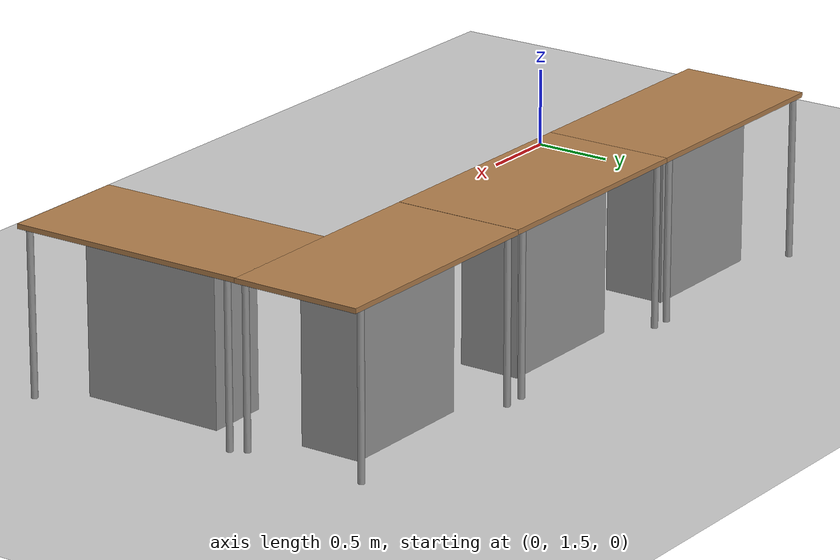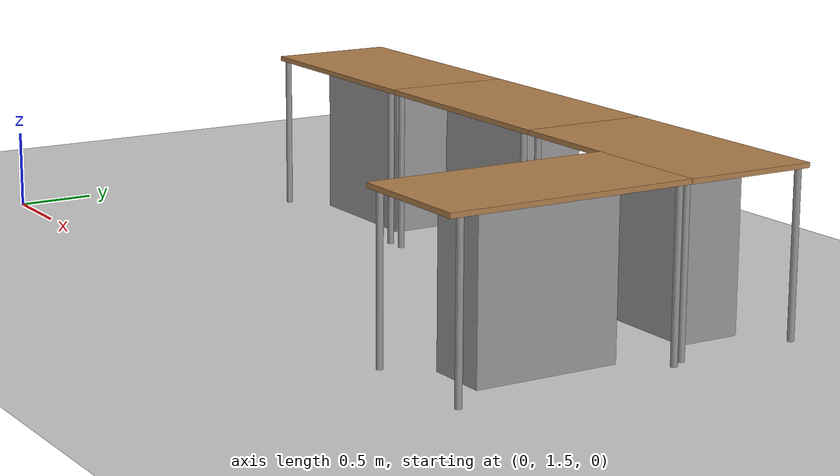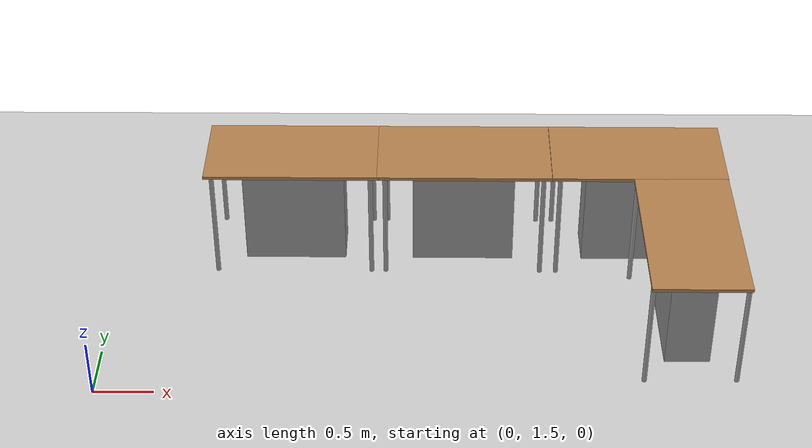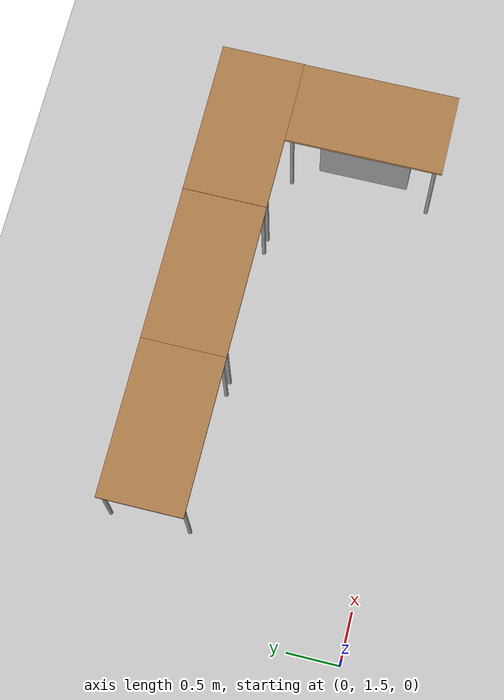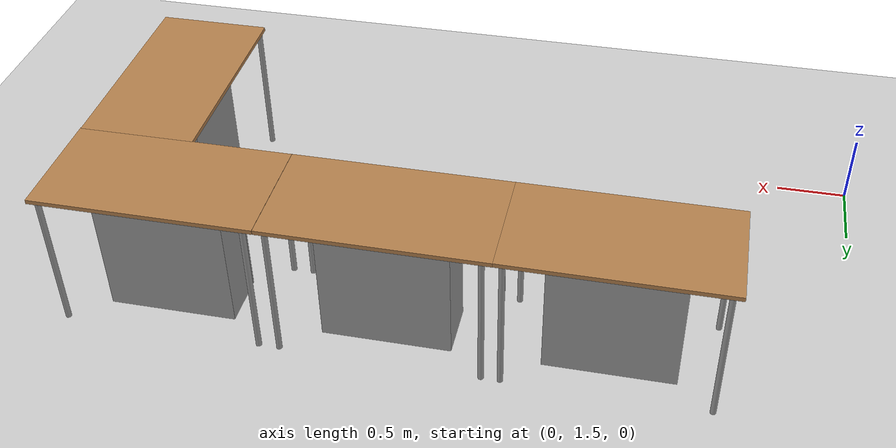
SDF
<sdf version="1.6">
 <world name="default">
  <model name="ground_plane">
   <static>1</static>
   <link name="link">
    <collision name="collision">
     <geometry><plane><normal>0 0 1</normal><size>100 100</size></plane></geometry>
     <surface><friction><ode><mu>100</mu><mu2>50</mu2></ode></friction></surface>
    </collision>
    <visual name="visual">
     <cast_shadows>0</cast_shadows>
     <geometry><plane><normal>0 0 1</normal><size>100 100</size></plane></geometry>
     <material>
      <script><uri>file://media/materials/scripts/gazebo.material</uri><name>Gazebo/Grey</name></script>
     </material>
    </visual>
   </link>
  </model>
  <model name="table-solid_clone_0_clone">
   <link name="link">
    <visual name="visual1">
     <pose>0 0 1 0 -0 0</pose>
     <geometry><box><size>1.5 0.8 0.03</size></box></geometry>
     <material>
      <script><uri>file://media/materials/scripts/gazebo.material</uri><name>Gazebo/Wood</name></script>
      <shader type="pixel"/>
      <ambient>1 1 1 1</ambient>
      <diffuse>1 1 1 1</diffuse>
      <specular>0.2 0.2 0.2 1</specular>
      <emissive>0 0 0 1</emissive>
     </material>
    </visual>
    <visual name="front_left_leg">
     <pose>0.68 0.38 0.5 0 -0 0</pose>
     <geometry><cylinder><radius>0.02</radius><length>1</length></cylinder></geometry>
     <material>
      <script><uri>file://media/materials/scripts/gazebo.material</uri><name>Gazebo/Grey</name></script>
      <shader type="pixel"/>
      <ambient>0.3 0.3 0.3 1</ambient>
      <diffuse>0.7 0.7 0.7 1</diffuse>
      <specular>0.01 0.01 0.01 1</specular>
      <emissive>0 0 0 1</emissive>
     </material>
    </visual>
    <visual name="front_right_leg">
     <pose>0.68 -0.38 0.5 0 -0 0</pose>
     <geometry><cylinder><radius>0.02</radius><length>1</length></cylinder></geometry>
     <material>
      <script><uri>file://media/materials/scripts/gazebo.material</uri><name>Gazebo/Grey</name></script>
      <shader type="pixel"/>
      <ambient>0.3 0.3 0.3 1</ambient>
      <diffuse>0.7 0.7 0.7 1</diffuse>
      <specular>0.01 0.01 0.01 1</specular>
      <emissive>0 0 0 1</emissive>
     </material>
    </visual>
    <visual name="back_right_leg">
     <pose>-0.68 -0.38 0.5 0 -0 0</pose>
     <geometry><cylinder><radius>0.02</radius><length>1</length></cylinder></geometry>
     <material>
      <script><uri>file://media/materials/scripts/gazebo.material</uri><name>Gazebo/Grey</name></script>
      <shader type="pixel"/>
      <ambient>0.3 0.3 0.3 1</ambient>
      <diffuse>0.7 0.7 0.7 1</diffuse>
      <specular>0.01 0.01 0.01 1</specular>
      <emissive>0 0 0 1</emissive>
     </material>
    </visual>
    <visual name="back_left_leg">
     <pose>-0.68 0.38 0.5 0 -0 0</pose>
     <geometry><cylinder><radius>0.02</radius><length>1</length></cylinder></geometry>
     <material>
      <script><uri>file://media/materials/scripts/gazebo.material</uri><name>Gazebo/Grey</name></script>
      <shader type="pixel"/>
      <ambient>0.3 0.3 0.3 1</ambient>
      <diffuse>0.7 0.7 0.7 1</diffuse>
      <specular>0.01 0.01 0.01 1</specular>
      <emissive>0 0 0 1</emissive>
     </material>
    </visual>
    <collision name="surface">
     <pose>0 0 1 0 -0 0</pose>
     <geometry><box><size>1.5 0.8 0.03</size></box></geometry>
     <surface>
      <friction>
       <ode><mu>0.6</mu><mu2>0.6</mu2><fdir1>0 0 0</fdir1><slip1>0</slip1><slip2>0</slip2></ode>
       <torsional>
        <coefficient>1</coefficient>
        <patch_radius>0</patch_radius>
        <surface_radius>0</surface_radius>
        <use_patch_radius>1</use_patch_radius>
        <ode><slip>0</slip></ode>
       </torsional>
      </friction>
      <bounce><restitution_coefficient>0</restitution_coefficient><threshold>1e+06</threshold></bounce>
      <contact>
       <collide_without_contact>0</collide_without_contact>
       <collide_without_contact_bitmask>1</collide_without_contact_bitmask>
       <collide_bitmask>1</collide_bitmask>
       <ode>
        <soft_cfm>0</soft_cfm>
        <soft_erp>0.2</soft_erp>
        <kp>1e+13</kp>
        <kd>1</kd>
        <max_vel>0.01</max_vel>
        <min_depth>0</min_depth>
       </ode>
       <bullet>
        <split_impulse>1</split_impulse>
        <split_impulse_penetration_threshold>-0.01</split_impulse_penetration_threshold>
        <soft_cfm>0</soft_cfm>
        <soft_erp>0.2</soft_erp>
        <kp>1e+13</kp>
        <kd>1</kd>
       </bullet>
      </contact>
     </surface>
    </collision>
    <collision name="front_left_leg">
     <pose>0.68 0.38 0.5 0 -0 0</pose>
     <geometry><cylinder><radius>0.02</radius><length>1</length></cylinder></geometry>
     <surface>
      <friction>
       <ode><mu>1</mu><mu2>1</mu2><fdir1>0 0 0</fdir1><slip1>0</slip1><slip2>0</slip2></ode>
       <torsional>
        <coefficient>1</coefficient>
        <patch_radius>0</patch_radius>
        <surface_radius>0</surface_radius>
        <use_patch_radius>1</use_patch_radius>
        <ode><slip>0</slip></ode>
       </torsional>
      </friction>
      <bounce><restitution_coefficient>0</restitution_coefficient><threshold>1e+06</threshold></bounce>
      <contact>
       <collide_without_contact>0</collide_without_contact>
       <collide_without_contact_bitmask>1</collide_without_contact_bitmask>
       <collide_bitmask>1</collide_bitmask>
       <ode>
        <soft_cfm>0</soft_cfm>
        <soft_erp>0.2</soft_erp>
        <kp>1e+13</kp>
        <kd>1</kd>
        <max_vel>0.01</max_vel>
        <min_depth>0</min_depth>
       </ode>
       <bullet>
        <split_impulse>1</split_impulse>
        <split_impulse_penetration_threshold>-0.01</split_impulse_penetration_threshold>
        <soft_cfm>0</soft_cfm>
        <soft_erp>0.2</soft_erp>
        <kp>1e+13</kp>
        <kd>1</kd>
       </bullet>
      </contact>
     </surface>
    </collision>
    <collision name="front_right_leg">
     <pose>0.68 -0.38 0.5 0 -0 0</pose>
     <geometry><cylinder><radius>0.02</radius><length>1</length></cylinder></geometry>
     <surface>
      <friction>
       <ode><mu>1</mu><mu2>1</mu2><fdir1>0 0 0</fdir1><slip1>0</slip1><slip2>0</slip2></ode>
       <torsional>
        <coefficient>1</coefficient>
        <patch_radius>0</patch_radius>
        <surface_radius>0</surface_radius>
        <use_patch_radius>1</use_patch_radius>
        <ode><slip>0</slip></ode>
       </torsional>
      </friction>
      <bounce><restitution_coefficient>0</restitution_coefficient><threshold>1e+06</threshold></bounce>
      <contact>
       <collide_without_contact>0</collide_without_contact>
       <collide_without_contact_bitmask>1</collide_without_contact_bitmask>
       <collide_bitmask>1</collide_bitmask>
       <ode>
        <soft_cfm>0</soft_cfm>
        <soft_erp>0.2</soft_erp>
        <kp>1e+13</kp>
        <kd>1</kd>
        <max_vel>0.01</max_vel>
        <min_depth>0</min_depth>
       </ode>
       <bullet>
        <split_impulse>1</split_impulse>
        <split_impulse_penetration_threshold>-0.01</split_impulse_penetration_threshold>
        <soft_cfm>0</soft_cfm>
        <soft_erp>0.2</soft_erp>
        <kp>1e+13</kp>
        <kd>1</kd>
       </bullet>
      </contact>
     </surface>
    </collision>
    <collision name="back_right_leg">
     <pose>-0.68 -0.38 0.5 0 -0 0</pose>
     <geometry><cylinder><radius>0.02</radius><length>1</length></cylinder></geometry>
     <surface>
      <friction>
       <ode><mu>1</mu><mu2>1</mu2><fdir1>0 0 0</fdir1><slip1>0</slip1><slip2>0</slip2></ode>
       <torsional>
        <coefficient>1</coefficient>
        <patch_radius>0</patch_radius>
        <surface_radius>0</surface_radius>
        <use_patch_radius>1</use_patch_radius>
        <ode><slip>0</slip></ode>
       </torsional>
      </friction>
      <bounce><restitution_coefficient>0</restitution_coefficient><threshold>1e+06</threshold></bounce>
      <contact>
       <collide_without_contact>0</collide_without_contact>
       <collide_without_contact_bitmask>1</collide_without_contact_bitmask>
       <collide_bitmask>1</collide_bitmask>
       <ode>
        <soft_cfm>0</soft_cfm>
        <soft_erp>0.2</soft_erp>
        <kp>1e+13</kp>
        <kd>1</kd>
        <max_vel>0.01</max_vel>
        <min_depth>0</min_depth>
       </ode>
       <bullet>
        <split_impulse>1</split_impulse>
        <split_impulse_penetration_threshold>-0.01</split_impulse_penetration_threshold>
        <soft_cfm>0</soft_cfm>
        <soft_erp>0.2</soft_erp>
        <kp>1e+13</kp>
        <kd>1</kd>
       </bullet>
      </contact>
     </surface>
    </collision>
    <collision name="back_left_leg">
     <pose>-0.68 0.38 0.5 0 -0 0</pose>
     <geometry><cylinder><radius>0.02</radius><length>1</length></cylinder></geometry>
     <surface>
      <friction>
       <ode><mu>1</mu><mu2>1</mu2><fdir1>0 0 0</fdir1><slip1>0</slip1><slip2>0</slip2></ode>
       <torsional>
        <coefficient>1</coefficient>
        <patch_radius>0</patch_radius>
        <surface_radius>0</surface_radius>
        <use_patch_radius>1</use_patch_radius>
        <ode><slip>0</slip></ode>
       </torsional>
      </friction>
      <bounce><restitution_coefficient>0</restitution_coefficient><threshold>1e+06</threshold></bounce>
      <contact>
       <collide_without_contact>0</collide_without_contact>
       <collide_without_contact_bitmask>1</collide_without_contact_bitmask>
       <collide_bitmask>1</collide_bitmask>
       <ode>
        <soft_cfm>0</soft_cfm>
        <soft_erp>0.2</soft_erp>
        <kp>1e+13</kp>
        <kd>1</kd>
        <max_vel>0.01</max_vel>
        <min_depth>0</min_depth>
       </ode>
       <bullet>
        <split_impulse>1</split_impulse>
        <split_impulse_penetration_threshold>-0.01</split_impulse_penetration_threshold>
        <soft_cfm>0</soft_cfm>
        <soft_erp>0.2</soft_erp>
        <kp>1e+13</kp>
        <kd>1</kd>
       </bullet>
      </contact>
     </surface>
    </collision>
   </link>
   <link name="link_1">
    <pose>0.000711 -0.001597 0.5 0 -0 0</pose>
    <inertial>
     <mass>0.336991</mass>
     <inertia>
      <ixx>0.0321457</ixx>
      <ixy>0</ixy>
      <ixz>0</ixz>
      <iyy>0.0501251</iyy>
      <iyz>0</iyz>
      <izz>0.0261056</izz>
     </inertia>
    </inertial>
    <visual name="visual">
     <geometry><box><size>0.885956 0.380374 1</size></box></geometry>
     <material>
      <lighting>1</lighting>
      <script><uri>file://media/materials/scripts/gazebo.material</uri><name>Gazebo/Grey</name></script>
      <shader type="pixel"><normal_map>__default__</normal_map></shader>
      <ambient>0.3 0.3 0.3 1</ambient>
      <diffuse>0.7 0.7 0.7 1</diffuse>
      <specular>0.01 0.01 0.01 1</specular>
      <emissive>0 0 0 1</emissive>
     </material>
    </visual>
    <collision name="collision">
     <geometry><box><size>0.885956 0.380374 1</size></box></geometry>
     <surface>
      <friction>
       <ode><mu>1</mu><mu2>1</mu2><fdir1>0 0 0</fdir1><slip1>0</slip1><slip2>0</slip2></ode>
       <torsional>
        <coefficient>1</coefficient>
        <patch_radius>0</patch_radius>
        <surface_radius>0</surface_radius>
        <use_patch_radius>1</use_patch_radius>
        <ode><slip>0</slip></ode>
       </torsional>
      </friction>
      <bounce><restitution_coefficient>0</restitution_coefficient><threshold>1e+06</threshold></bounce>
      <contact>
       <collide_without_contact>0</collide_without_contact>
       <collide_without_contact_bitmask>1</collide_without_contact_bitmask>
       <collide_bitmask>1</collide_bitmask>
       <ode>
        <soft_cfm>0</soft_cfm>
        <soft_erp>0.2</soft_erp>
        <kp>1e+13</kp>
        <kd>1</kd>
        <max_vel>0.01</max_vel>
        <min_depth>0</min_depth>
       </ode>
       <bullet>
        <split_impulse>1</split_impulse>
        <split_impulse_penetration_threshold>-0.01</split_impulse_penetration_threshold>
        <soft_cfm>0</soft_cfm>
        <soft_erp>0.2</soft_erp>
        <kp>1e+13</kp>
        <kd>1</kd>
       </bullet>
      </contact>
     </surface>
    </collision>
   </link>
   <static>1</static>
   <pose>4.54061 3.50038 0 0 0 -0.002836</pose>
  </model>
  <model name="table-solid_clone_0_clone_clone">
   <link name="link">
    <visual name="visual1">
     <pose>0 0 1 0 -0 0</pose>
     <geometry><box><size>1.5 0.8 0.03</size></box></geometry>
     <material>
      <script><uri>file://media/materials/scripts/gazebo.material</uri><name>Gazebo/Wood</name></script>
      <shader type="pixel"/>
      <ambient>1 1 1 1</ambient>
      <diffuse>1 1 1 1</diffuse>
      <specular>0.2 0.2 0.2 1</specular>
      <emissive>0 0 0 1</emissive>
     </material>
    </visual>
    <visual name="front_left_leg">
     <pose>0.68 0.38 0.5 0 -0 0</pose>
     <geometry><cylinder><radius>0.02</radius><length>1</length></cylinder></geometry>
     <material>
      <script><uri>file://media/materials/scripts/gazebo.material</uri><name>Gazebo/Grey</name></script>
      <shader type="pixel"/>
      <ambient>0.3 0.3 0.3 1</ambient>
      <diffuse>0.7 0.7 0.7 1</diffuse>
      <specular>0.01 0.01 0.01 1</specular>
      <emissive>0 0 0 1</emissive>
     </material>
    </visual>
    <visual name="front_right_leg">
     <pose>0.68 -0.38 0.5 0 -0 0</pose>
     <geometry><cylinder><radius>0.02</radius><length>1</length></cylinder></geometry>
     <material>
      <script><uri>file://media/materials/scripts/gazebo.material</uri><name>Gazebo/Grey</name></script>
      <shader type="pixel"/>
      <ambient>0.3 0.3 0.3 1</ambient>
      <diffuse>0.7 0.7 0.7 1</diffuse>
      <specular>0.01 0.01 0.01 1</specular>
      <emissive>0 0 0 1</emissive>
     </material>
    </visual>
    <visual name="back_right_leg">
     <pose>-0.68 -0.38 0.5 0 -0 0</pose>
     <geometry><cylinder><radius>0.02</radius><length>1</length></cylinder></geometry>
     <material>
      <script><uri>file://media/materials/scripts/gazebo.material</uri><name>Gazebo/Grey</name></script>
      <shader type="pixel"/>
      <ambient>0.3 0.3 0.3 1</ambient>
      <diffuse>0.7 0.7 0.7 1</diffuse>
      <specular>0.01 0.01 0.01 1</specular>
      <emissive>0 0 0 1</emissive>
     </material>
    </visual>
    <visual name="back_left_leg">
     <pose>-0.68 0.38 0.5 0 -0 0</pose>
     <geometry><cylinder><radius>0.02</radius><length>1</length></cylinder></geometry>
     <material>
      <script><uri>file://media/materials/scripts/gazebo.material</uri><name>Gazebo/Grey</name></script>
      <shader type="pixel"/>
      <ambient>0.3 0.3 0.3 1</ambient>
      <diffuse>0.7 0.7 0.7 1</diffuse>
      <specular>0.01 0.01 0.01 1</specular>
      <emissive>0 0 0 1</emissive>
     </material>
    </visual>
    <collision name="surface">
     <pose>0 0 1 0 -0 0</pose>
     <geometry><box><size>1.5 0.8 0.03</size></box></geometry>
     <surface>
      <friction>
       <ode><mu>0.6</mu><mu2>0.6</mu2><fdir1>0 0 0</fdir1><slip1>0</slip1><slip2>0</slip2></ode>
       <torsional>
        <coefficient>1</coefficient>
        <patch_radius>0</patch_radius>
        <surface_radius>0</surface_radius>
        <use_patch_radius>1</use_patch_radius>
        <ode><slip>0</slip></ode>
       </torsional>
      </friction>
      <bounce><restitution_coefficient>0</restitution_coefficient><threshold>1e+06</threshold></bounce>
      <contact>
       <collide_without_contact>0</collide_without_contact>
       <collide_without_contact_bitmask>1</collide_without_contact_bitmask>
       <collide_bitmask>1</collide_bitmask>
       <ode>
        <soft_cfm>0</soft_cfm>
        <soft_erp>0.2</soft_erp>
        <kp>1e+13</kp>
        <kd>1</kd>
        <max_vel>0.01</max_vel>
        <min_depth>0</min_depth>
       </ode>
       <bullet>
        <split_impulse>1</split_impulse>
        <split_impulse_penetration_threshold>-0.01</split_impulse_penetration_threshold>
        <soft_cfm>0</soft_cfm>
        <soft_erp>0.2</soft_erp>
        <kp>1e+13</kp>
        <kd>1</kd>
       </bullet>
      </contact>
     </surface>
    </collision>
    <collision name="front_left_leg">
     <pose>0.68 0.38 0.5 0 -0 0</pose>
     <geometry><cylinder><radius>0.02</radius><length>1</length></cylinder></geometry>
     <surface>
      <friction>
       <ode><mu>1</mu><mu2>1</mu2><fdir1>0 0 0</fdir1><slip1>0</slip1><slip2>0</slip2></ode>
       <torsional>
        <coefficient>1</coefficient>
        <patch_radius>0</patch_radius>
        <surface_radius>0</surface_radius>
        <use_patch_radius>1</use_patch_radius>
        <ode><slip>0</slip></ode>
       </torsional>
      </friction>
      <bounce><restitution_coefficient>0</restitution_coefficient><threshold>1e+06</threshold></bounce>
      <contact>
       <collide_without_contact>0</collide_without_contact>
       <collide_without_contact_bitmask>1</collide_without_contact_bitmask>
       <collide_bitmask>1</collide_bitmask>
       <ode>
        <soft_cfm>0</soft_cfm>
        <soft_erp>0.2</soft_erp>
        <kp>1e+13</kp>
        <kd>1</kd>
        <max_vel>0.01</max_vel>
        <min_depth>0</min_depth>
       </ode>
       <bullet>
        <split_impulse>1</split_impulse>
        <split_impulse_penetration_threshold>-0.01</split_impulse_penetration_threshold>
        <soft_cfm>0</soft_cfm>
        <soft_erp>0.2</soft_erp>
        <kp>1e+13</kp>
        <kd>1</kd>
       </bullet>
      </contact>
     </surface>
    </collision>
    <collision name="front_right_leg">
     <pose>0.68 -0.38 0.5 0 -0 0</pose>
     <geometry><cylinder><radius>0.02</radius><length>1</length></cylinder></geometry>
     <surface>
      <friction>
       <ode><mu>1</mu><mu2>1</mu2><fdir1>0 0 0</fdir1><slip1>0</slip1><slip2>0</slip2></ode>
       <torsional>
        <coefficient>1</coefficient>
        <patch_radius>0</patch_radius>
        <surface_radius>0</surface_radius>
        <use_patch_radius>1</use_patch_radius>
        <ode><slip>0</slip></ode>
       </torsional>
      </friction>
      <bounce><restitution_coefficient>0</restitution_coefficient><threshold>1e+06</threshold></bounce>
      <contact>
       <collide_without_contact>0</collide_without_contact>
       <collide_without_contact_bitmask>1</collide_without_contact_bitmask>
       <collide_bitmask>1</collide_bitmask>
       <ode>
        <soft_cfm>0</soft_cfm>
        <soft_erp>0.2</soft_erp>
        <kp>1e+13</kp>
        <kd>1</kd>
        <max_vel>0.01</max_vel>
        <min_depth>0</min_depth>
       </ode>
       <bullet>
        <split_impulse>1</split_impulse>
        <split_impulse_penetration_threshold>-0.01</split_impulse_penetration_threshold>
        <soft_cfm>0</soft_cfm>
        <soft_erp>0.2</soft_erp>
        <kp>1e+13</kp>
        <kd>1</kd>
       </bullet>
      </contact>
     </surface>
    </collision>
    <collision name="back_right_leg">
     <pose>-0.68 -0.38 0.5 0 -0 0</pose>
     <geometry><cylinder><radius>0.02</radius><length>1</length></cylinder></geometry>
     <surface>
      <friction>
       <ode><mu>1</mu><mu2>1</mu2><fdir1>0 0 0</fdir1><slip1>0</slip1><slip2>0</slip2></ode>
       <torsional>
        <coefficient>1</coefficient>
        <patch_radius>0</patch_radius>
        <surface_radius>0</surface_radius>
        <use_patch_radius>1</use_patch_radius>
        <ode><slip>0</slip></ode>
       </torsional>
      </friction>
      <bounce><restitution_coefficient>0</restitution_coefficient><threshold>1e+06</threshold></bounce>
      <contact>
       <collide_without_contact>0</collide_without_contact>
       <collide_without_contact_bitmask>1</collide_without_contact_bitmask>
       <collide_bitmask>1</collide_bitmask>
       <ode>
        <soft_cfm>0</soft_cfm>
        <soft_erp>0.2</soft_erp>
        <kp>1e+13</kp>
        <kd>1</kd>
        <max_vel>0.01</max_vel>
        <min_depth>0</min_depth>
       </ode>
       <bullet>
        <split_impulse>1</split_impulse>
        <split_impulse_penetration_threshold>-0.01</split_impulse_penetration_threshold>
        <soft_cfm>0</soft_cfm>
        <soft_erp>0.2</soft_erp>
        <kp>1e+13</kp>
        <kd>1</kd>
       </bullet>
      </contact>
     </surface>
    </collision>
    <collision name="back_left_leg">
     <pose>-0.68 0.38 0.5 0 -0 0</pose>
     <geometry><cylinder><radius>0.02</radius><length>1</length></cylinder></geometry>
     <surface>
      <friction>
       <ode><mu>1</mu><mu2>1</mu2><fdir1>0 0 0</fdir1><slip1>0</slip1><slip2>0</slip2></ode>
       <torsional>
        <coefficient>1</coefficient>
        <patch_radius>0</patch_radius>
        <surface_radius>0</surface_radius>
        <use_patch_radius>1</use_patch_radius>
        <ode><slip>0</slip></ode>
       </torsional>
      </friction>
      <bounce><restitution_coefficient>0</restitution_coefficient><threshold>1e+06</threshold></bounce>
      <contact>
       <collide_without_contact>0</collide_without_contact>
       <collide_without_contact_bitmask>1</collide_without_contact_bitmask>
       <collide_bitmask>1</collide_bitmask>
       <ode>
        <soft_cfm>0</soft_cfm>
        <soft_erp>0.2</soft_erp>
        <kp>1e+13</kp>
        <kd>1</kd>
        <max_vel>0.01</max_vel>
        <min_depth>0</min_depth>
       </ode>
       <bullet>
        <split_impulse>1</split_impulse>
        <split_impulse_penetration_threshold>-0.01</split_impulse_penetration_threshold>
        <soft_cfm>0</soft_cfm>
        <soft_erp>0.2</soft_erp>
        <kp>1e+13</kp>
        <kd>1</kd>
       </bullet>
      </contact>
     </surface>
    </collision>
   </link>
   <link name="link_1">
    <pose>0.000711 -0.001597 0.5 0 -0 0</pose>
    <inertial>
     <mass>0.336991</mass>
     <inertia>
      <ixx>0.0321457</ixx>
      <ixy>0</ixy>
      <ixz>0</ixz>
      <iyy>0.0501251</iyy>
      <iyz>0</iyz>
      <izz>0.0261056</izz>
     </inertia>
    </inertial>
    <visual name="visual">
     <geometry><box><size>0.885956 0.380374 1</size></box></geometry>
     <material>
      <lighting>1</lighting>
      <script><uri>file://media/materials/scripts/gazebo.material</uri><name>Gazebo/Grey</name></script>
      <shader type="pixel"><normal_map>__default__</normal_map></shader>
      <ambient>0.3 0.3 0.3 1</ambient>
      <diffuse>0.7 0.7 0.7 1</diffuse>
      <specular>0.01 0.01 0.01 1</specular>
      <emissive>0 0 0 1</emissive>
     </material>
    </visual>
    <collision name="collision">
     <geometry><box><size>0.885956 0.380374 1</size></box></geometry>
     <surface>
      <friction>
       <ode><mu>1</mu><mu2>1</mu2><fdir1>0 0 0</fdir1><slip1>0</slip1><slip2>0</slip2></ode>
       <torsional>
        <coefficient>1</coefficient>
        <patch_radius>0</patch_radius>
        <surface_radius>0</surface_radius>
        <use_patch_radius>1</use_patch_radius>
        <ode><slip>0</slip></ode>
       </torsional>
      </friction>
      <bounce><restitution_coefficient>0</restitution_coefficient><threshold>1e+06</threshold></bounce>
      <contact>
       <collide_without_contact>0</collide_without_contact>
       <collide_without_contact_bitmask>1</collide_without_contact_bitmask>
       <collide_bitmask>1</collide_bitmask>
       <ode>
        <soft_cfm>0</soft_cfm>
        <soft_erp>0.2</soft_erp>
        <kp>1e+13</kp>
        <kd>1</kd>
        <max_vel>0.01</max_vel>
        <min_depth>0</min_depth>
       </ode>
       <bullet>
        <split_impulse>1</split_impulse>
        <split_impulse_penetration_threshold>-0.01</split_impulse_penetration_threshold>
        <soft_cfm>0</soft_cfm>
        <soft_erp>0.2</soft_erp>
        <kp>1e+13</kp>
        <kd>1</kd>
       </bullet>
      </contact>
     </surface>
    </collision>
   </link>
   <static>1</static>
   <pose>3.03851 3.5034 0 0 0 -0.002836</pose>
  </model>
  <model name="table-solid_clone_0_clone_clone_0">
   <link name="link">
    <visual name="visual1">
     <pose>0 0 1 0 -0 0</pose>
     <geometry><box><size>1.5 0.8 0.03</size></box></geometry>
     <material>
      <script><uri>file://media/materials/scripts/gazebo.material</uri><name>Gazebo/Wood</name></script>
      <shader type="pixel"/>
      <ambient>1 1 1 1</ambient>
      <diffuse>1 1 1 1</diffuse>
      <specular>0.2 0.2 0.2 1</specular>
      <emissive>0 0 0 1</emissive>
     </material>
    </visual>
    <visual name="front_left_leg">
     <pose>0.68 0.38 0.5 0 -0 0</pose>
     <geometry><cylinder><radius>0.02</radius><length>1</length></cylinder></geometry>
     <material>
      <script><uri>file://media/materials/scripts/gazebo.material</uri><name>Gazebo/Grey</name></script>
      <shader type="pixel"/>
      <ambient>0.3 0.3 0.3 1</ambient>
      <diffuse>0.7 0.7 0.7 1</diffuse>
      <specular>0.01 0.01 0.01 1</specular>
      <emissive>0 0 0 1</emissive>
     </material>
    </visual>
    <visual name="front_right_leg">
     <pose>0.68 -0.38 0.5 0 -0 0</pose>
     <geometry><cylinder><radius>0.02</radius><length>1</length></cylinder></geometry>
     <material>
      <script><uri>file://media/materials/scripts/gazebo.material</uri><name>Gazebo/Grey</name></script>
      <shader type="pixel"/>
      <ambient>0.3 0.3 0.3 1</ambient>
      <diffuse>0.7 0.7 0.7 1</diffuse>
      <specular>0.01 0.01 0.01 1</specular>
      <emissive>0 0 0 1</emissive>
     </material>
    </visual>
    <visual name="back_right_leg">
     <pose>-0.68 -0.38 0.5 0 -0 0</pose>
     <geometry><cylinder><radius>0.02</radius><length>1</length></cylinder></geometry>
     <material>
      <script><uri>file://media/materials/scripts/gazebo.material</uri><name>Gazebo/Grey</name></script>
      <shader type="pixel"/>
      <ambient>0.3 0.3 0.3 1</ambient>
      <diffuse>0.7 0.7 0.7 1</diffuse>
      <specular>0.01 0.01 0.01 1</specular>
      <emissive>0 0 0 1</emissive>
     </material>
    </visual>
    <visual name="back_left_leg">
     <pose>-0.68 0.38 0.5 0 -0 0</pose>
     <geometry><cylinder><radius>0.02</radius><length>1</length></cylinder></geometry>
     <material>
      <script><uri>file://media/materials/scripts/gazebo.material</uri><name>Gazebo/Grey</name></script>
      <shader type="pixel"/>
      <ambient>0.3 0.3 0.3 1</ambient>
      <diffuse>0.7 0.7 0.7 1</diffuse>
      <specular>0.01 0.01 0.01 1</specular>
      <emissive>0 0 0 1</emissive>
     </material>
    </visual>
    <collision name="surface">
     <pose>0 0 1 0 -0 0</pose>
     <geometry><box><size>1.5 0.8 0.03</size></box></geometry>
     <surface>
      <friction>
       <ode><mu>0.6</mu><mu2>0.6</mu2><fdir1>0 0 0</fdir1><slip1>0</slip1><slip2>0</slip2></ode>
       <torsional>
        <coefficient>1</coefficient>
        <patch_radius>0</patch_radius>
        <surface_radius>0</surface_radius>
        <use_patch_radius>1</use_patch_radius>
        <ode><slip>0</slip></ode>
       </torsional>
      </friction>
      <bounce><restitution_coefficient>0</restitution_coefficient><threshold>1e+06</threshold></bounce>
      <contact>
       <collide_without_contact>0</collide_without_contact>
       <collide_without_contact_bitmask>1</collide_without_contact_bitmask>
       <collide_bitmask>1</collide_bitmask>
       <ode>
        <soft_cfm>0</soft_cfm>
        <soft_erp>0.2</soft_erp>
        <kp>1e+13</kp>
        <kd>1</kd>
        <max_vel>0.01</max_vel>
        <min_depth>0</min_depth>
       </ode>
       <bullet>
        <split_impulse>1</split_impulse>
        <split_impulse_penetration_threshold>-0.01</split_impulse_penetration_threshold>
        <soft_cfm>0</soft_cfm>
        <soft_erp>0.2</soft_erp>
        <kp>1e+13</kp>
        <kd>1</kd>
       </bullet>
      </contact>
     </surface>
    </collision>
    <collision name="front_left_leg">
     <pose>0.68 0.38 0.5 0 -0 0</pose>
     <geometry><cylinder><radius>0.02</radius><length>1</length></cylinder></geometry>
     <surface>
      <friction>
       <ode><mu>1</mu><mu2>1</mu2><fdir1>0 0 0</fdir1><slip1>0</slip1><slip2>0</slip2></ode>
       <torsional>
        <coefficient>1</coefficient>
        <patch_radius>0</patch_radius>
        <surface_radius>0</surface_radius>
        <use_patch_radius>1</use_patch_radius>
        <ode><slip>0</slip></ode>
       </torsional>
      </friction>
      <bounce><restitution_coefficient>0</restitution_coefficient><threshold>1e+06</threshold></bounce>
      <contact>
       <collide_without_contact>0</collide_without_contact>
       <collide_without_contact_bitmask>1</collide_without_contact_bitmask>
       <collide_bitmask>1</collide_bitmask>
       <ode>
        <soft_cfm>0</soft_cfm>
        <soft_erp>0.2</soft_erp>
        <kp>1e+13</kp>
        <kd>1</kd>
        <max_vel>0.01</max_vel>
        <min_depth>0</min_depth>
       </ode>
       <bullet>
        <split_impulse>1</split_impulse>
        <split_impulse_penetration_threshold>-0.01</split_impulse_penetration_threshold>
        <soft_cfm>0</soft_cfm>
        <soft_erp>0.2</soft_erp>
        <kp>1e+13</kp>
        <kd>1</kd>
       </bullet>
      </contact>
     </surface>
    </collision>
    <collision name="front_right_leg">
     <pose>0.68 -0.38 0.5 0 -0 0</pose>
     <geometry><cylinder><radius>0.02</radius><length>1</length></cylinder></geometry>
     <surface>
      <friction>
       <ode><mu>1</mu><mu2>1</mu2><fdir1>0 0 0</fdir1><slip1>0</slip1><slip2>0</slip2></ode>
       <torsional>
        <coefficient>1</coefficient>
        <patch_radius>0</patch_radius>
        <surface_radius>0</surface_radius>
        <use_patch_radius>1</use_patch_radius>
        <ode><slip>0</slip></ode>
       </torsional>
      </friction>
      <bounce><restitution_coefficient>0</restitution_coefficient><threshold>1e+06</threshold></bounce>
      <contact>
       <collide_without_contact>0</collide_without_contact>
       <collide_without_contact_bitmask>1</collide_without_contact_bitmask>
       <collide_bitmask>1</collide_bitmask>
       <ode>
        <soft_cfm>0</soft_cfm>
        <soft_erp>0.2</soft_erp>
        <kp>1e+13</kp>
        <kd>1</kd>
        <max_vel>0.01</max_vel>
        <min_depth>0</min_depth>
       </ode>
       <bullet>
        <split_impulse>1</split_impulse>
        <split_impulse_penetration_threshold>-0.01</split_impulse_penetration_threshold>
        <soft_cfm>0</soft_cfm>
        <soft_erp>0.2</soft_erp>
        <kp>1e+13</kp>
        <kd>1</kd>
       </bullet>
      </contact>
     </surface>
    </collision>
    <collision name="back_right_leg">
     <pose>-0.68 -0.38 0.5 0 -0 0</pose>
     <geometry><cylinder><radius>0.02</radius><length>1</length></cylinder></geometry>
     <surface>
      <friction>
       <ode><mu>1</mu><mu2>1</mu2><fdir1>0 0 0</fdir1><slip1>0</slip1><slip2>0</slip2></ode>
       <torsional>
        <coefficient>1</coefficient>
        <patch_radius>0</patch_radius>
        <surface_radius>0</surface_radius>
        <use_patch_radius>1</use_patch_radius>
        <ode><slip>0</slip></ode>
       </torsional>
      </friction>
      <bounce><restitution_coefficient>0</restitution_coefficient><threshold>1e+06</threshold></bounce>
      <contact>
       <collide_without_contact>0</collide_without_contact>
       <collide_without_contact_bitmask>1</collide_without_contact_bitmask>
       <collide_bitmask>1</collide_bitmask>
       <ode>
        <soft_cfm>0</soft_cfm>
        <soft_erp>0.2</soft_erp>
        <kp>1e+13</kp>
        <kd>1</kd>
        <max_vel>0.01</max_vel>
        <min_depth>0</min_depth>
       </ode>
       <bullet>
        <split_impulse>1</split_impulse>
        <split_impulse_penetration_threshold>-0.01</split_impulse_penetration_threshold>
        <soft_cfm>0</soft_cfm>
        <soft_erp>0.2</soft_erp>
        <kp>1e+13</kp>
        <kd>1</kd>
       </bullet>
      </contact>
     </surface>
    </collision>
    <collision name="back_left_leg">
     <pose>-0.68 0.38 0.5 0 -0 0</pose>
     <geometry><cylinder><radius>0.02</radius><length>1</length></cylinder></geometry>
     <surface>
      <friction>
       <ode><mu>1</mu><mu2>1</mu2><fdir1>0 0 0</fdir1><slip1>0</slip1><slip2>0</slip2></ode>
       <torsional>
        <coefficient>1</coefficient>
        <patch_radius>0</patch_radius>
        <surface_radius>0</surface_radius>
        <use_patch_radius>1</use_patch_radius>
        <ode><slip>0</slip></ode>
       </torsional>
      </friction>
      <bounce><restitution_coefficient>0</restitution_coefficient><threshold>1e+06</threshold></bounce>
      <contact>
       <collide_without_contact>0</collide_without_contact>
       <collide_without_contact_bitmask>1</collide_without_contact_bitmask>
       <collide_bitmask>1</collide_bitmask>
       <ode>
        <soft_cfm>0</soft_cfm>
        <soft_erp>0.2</soft_erp>
        <kp>1e+13</kp>
        <kd>1</kd>
        <max_vel>0.01</max_vel>
        <min_depth>0</min_depth>
       </ode>
       <bullet>
        <split_impulse>1</split_impulse>
        <split_impulse_penetration_threshold>-0.01</split_impulse_penetration_threshold>
        <soft_cfm>0</soft_cfm>
        <soft_erp>0.2</soft_erp>
        <kp>1e+13</kp>
        <kd>1</kd>
       </bullet>
      </contact>
     </surface>
    </collision>
   </link>
   <link name="link_1">
    <pose>0.000711 -0.001597 0.5 0 -0 0</pose>
    <inertial>
     <mass>0.336991</mass>
     <inertia>
      <ixx>0.0321457</ixx>
      <ixy>0</ixy>
      <ixz>0</ixz>
      <iyy>0.0501251</iyy>
      <iyz>0</iyz>
      <izz>0.0261056</izz>
     </inertia>
    </inertial>
    <visual name="visual">
     <geometry><box><size>0.885956 0.380374 1</size></box></geometry>
     <material>
      <lighting>1</lighting>
      <script><uri>file://media/materials/scripts/gazebo.material</uri><name>Gazebo/Grey</name></script>
      <shader type="pixel"><normal_map>__default__</normal_map></shader>
      <ambient>0.3 0.3 0.3 1</ambient>
      <diffuse>0.7 0.7 0.7 1</diffuse>
      <specular>0.01 0.01 0.01 1</specular>
      <emissive>0 0 0 1</emissive>
     </material>
    </visual>
    <collision name="collision">
     <geometry><box><size>0.885956 0.380374 1</size></box></geometry>
     <surface>
      <friction>
       <ode><mu>1</mu><mu2>1</mu2><fdir1>0 0 0</fdir1><slip1>0</slip1><slip2>0</slip2></ode>
       <torsional>
        <coefficient>1</coefficient>
        <patch_radius>0</patch_radius>
        <surface_radius>0</surface_radius>
        <use_patch_radius>1</use_patch_radius>
        <ode><slip>0</slip></ode>
       </torsional>
      </friction>
      <bounce><restitution_coefficient>0</restitution_coefficient><threshold>1e+06</threshold></bounce>
      <contact>
       <collide_without_contact>0</collide_without_contact>
       <collide_without_contact_bitmask>1</collide_without_contact_bitmask>
       <collide_bitmask>1</collide_bitmask>
       <ode>
        <soft_cfm>0</soft_cfm>
        <soft_erp>0.2</soft_erp>
        <kp>1e+13</kp>
        <kd>1</kd>
        <max_vel>0.01</max_vel>
        <min_depth>0</min_depth>
       </ode>
       <bullet>
        <split_impulse>1</split_impulse>
        <split_impulse_penetration_threshold>-0.01</split_impulse_penetration_threshold>
        <soft_cfm>0</soft_cfm>
        <soft_erp>0.2</soft_erp>
        <kp>1e+13</kp>
        <kd>1</kd>
       </bullet>
      </contact>
     </surface>
    </collision>
   </link>
   <static>1</static>
   <pose>1.5528 3.5066 0 0 0 -0.002836</pose>
  </model>
  <model name="table-solid_clone_0_clone_0">
   <link name="link">
    <visual name="visual1">
     <pose>0 0 1 0 -0 0</pose>
     <geometry><box><size>1.5 0.8 0.03</size></box></geometry>
     <material>
      <script><uri>file://media/materials/scripts/gazebo.material</uri><name>Gazebo/Wood</name></script>
      <shader type="pixel"/>
      <ambient>1 1 1 1</ambient>
      <diffuse>1 1 1 1</diffuse>
      <specular>0.2 0.2 0.2 1</specular>
      <emissive>0 0 0 1</emissive>
     </material>
    </visual>
    <visual name="front_left_leg">
     <pose>0.68 0.38 0.5 0 -0 0</pose>
     <geometry><cylinder><radius>0.02</radius><length>1</length></cylinder></geometry>
     <material>
      <script><uri>file://media/materials/scripts/gazebo.material</uri><name>Gazebo/Grey</name></script>
      <shader type="pixel"/>
      <ambient>0.3 0.3 0.3 1</ambient>
      <diffuse>0.7 0.7 0.7 1</diffuse>
      <specular>0.01 0.01 0.01 1</specular>
      <emissive>0 0 0 1</emissive>
     </material>
    </visual>
    <visual name="front_right_leg">
     <pose>0.68 -0.38 0.5 0 -0 0</pose>
     <geometry><cylinder><radius>0.02</radius><length>1</length></cylinder></geometry>
     <material>
      <script><uri>file://media/materials/scripts/gazebo.material</uri><name>Gazebo/Grey</name></script>
      <shader type="pixel"/>
      <ambient>0.3 0.3 0.3 1</ambient>
      <diffuse>0.7 0.7 0.7 1</diffuse>
      <specular>0.01 0.01 0.01 1</specular>
      <emissive>0 0 0 1</emissive>
     </material>
    </visual>
    <visual name="back_right_leg">
     <pose>-0.68 -0.38 0.5 0 -0 0</pose>
     <geometry><cylinder><radius>0.02</radius><length>1</length></cylinder></geometry>
     <material>
      <script><uri>file://media/materials/scripts/gazebo.material</uri><name>Gazebo/Grey</name></script>
      <shader type="pixel"/>
      <ambient>0.3 0.3 0.3 1</ambient>
      <diffuse>0.7 0.7 0.7 1</diffuse>
      <specular>0.01 0.01 0.01 1</specular>
      <emissive>0 0 0 1</emissive>
     </material>
    </visual>
    <visual name="back_left_leg">
     <pose>-0.68 0.38 0.5 0 -0 0</pose>
     <geometry><cylinder><radius>0.02</radius><length>1</length></cylinder></geometry>
     <material>
      <script><uri>file://media/materials/scripts/gazebo.material</uri><name>Gazebo/Grey</name></script>
      <shader type="pixel"/>
      <ambient>0.3 0.3 0.3 1</ambient>
      <diffuse>0.7 0.7 0.7 1</diffuse>
      <specular>0.01 0.01 0.01 1</specular>
      <emissive>0 0 0 1</emissive>
     </material>
    </visual>
    <collision name="surface">
     <pose>0 0 1 0 -0 0</pose>
     <geometry><box><size>1.5 0.8 0.03</size></box></geometry>
     <surface>
      <friction>
       <ode><mu>0.6</mu><mu2>0.6</mu2><fdir1>0 0 0</fdir1><slip1>0</slip1><slip2>0</slip2></ode>
       <torsional>
        <coefficient>1</coefficient>
        <patch_radius>0</patch_radius>
        <surface_radius>0</surface_radius>
        <use_patch_radius>1</use_patch_radius>
        <ode><slip>0</slip></ode>
       </torsional>
      </friction>
      <bounce><restitution_coefficient>0</restitution_coefficient><threshold>1e+06</threshold></bounce>
      <contact>
       <collide_without_contact>0</collide_without_contact>
       <collide_without_contact_bitmask>1</collide_without_contact_bitmask>
       <collide_bitmask>1</collide_bitmask>
       <ode>
        <soft_cfm>0</soft_cfm>
        <soft_erp>0.2</soft_erp>
        <kp>1e+13</kp>
        <kd>1</kd>
        <max_vel>0.01</max_vel>
        <min_depth>0</min_depth>
       </ode>
       <bullet>
        <split_impulse>1</split_impulse>
        <split_impulse_penetration_threshold>-0.01</split_impulse_penetration_threshold>
        <soft_cfm>0</soft_cfm>
        <soft_erp>0.2</soft_erp>
        <kp>1e+13</kp>
        <kd>1</kd>
       </bullet>
      </contact>
     </surface>
    </collision>
    <collision name="front_left_leg">
     <pose>0.68 0.38 0.5 0 -0 0</pose>
     <geometry><cylinder><radius>0.02</radius><length>1</length></cylinder></geometry>
     <surface>
      <friction>
       <ode><mu>1</mu><mu2>1</mu2><fdir1>0 0 0</fdir1><slip1>0</slip1><slip2>0</slip2></ode>
       <torsional>
        <coefficient>1</coefficient>
        <patch_radius>0</patch_radius>
        <surface_radius>0</surface_radius>
        <use_patch_radius>1</use_patch_radius>
        <ode><slip>0</slip></ode>
       </torsional>
      </friction>
      <bounce><restitution_coefficient>0</restitution_coefficient><threshold>1e+06</threshold></bounce>
      <contact>
       <collide_without_contact>0</collide_without_contact>
       <collide_without_contact_bitmask>1</collide_without_contact_bitmask>
       <collide_bitmask>1</collide_bitmask>
       <ode>
        <soft_cfm>0</soft_cfm>
        <soft_erp>0.2</soft_erp>
        <kp>1e+13</kp>
        <kd>1</kd>
        <max_vel>0.01</max_vel>
        <min_depth>0</min_depth>
       </ode>
       <bullet>
        <split_impulse>1</split_impulse>
        <split_impulse_penetration_threshold>-0.01</split_impulse_penetration_threshold>
        <soft_cfm>0</soft_cfm>
        <soft_erp>0.2</soft_erp>
        <kp>1e+13</kp>
        <kd>1</kd>
       </bullet>
      </contact>
     </surface>
    </collision>
    <collision name="front_right_leg">
     <pose>0.68 -0.38 0.5 0 -0 0</pose>
     <geometry><cylinder><radius>0.02</radius><length>1</length></cylinder></geometry>
     <surface>
      <friction>
       <ode><mu>1</mu><mu2>1</mu2><fdir1>0 0 0</fdir1><slip1>0</slip1><slip2>0</slip2></ode>
       <torsional>
        <coefficient>1</coefficient>
        <patch_radius>0</patch_radius>
        <surface_radius>0</surface_radius>
        <use_patch_radius>1</use_patch_radius>
        <ode><slip>0</slip></ode>
       </torsional>
      </friction>
      <bounce><restitution_coefficient>0</restitution_coefficient><threshold>1e+06</threshold></bounce>
      <contact>
       <collide_without_contact>0</collide_without_contact>
       <collide_without_contact_bitmask>1</collide_without_contact_bitmask>
       <collide_bitmask>1</collide_bitmask>
       <ode>
        <soft_cfm>0</soft_cfm>
        <soft_erp>0.2</soft_erp>
        <kp>1e+13</kp>
        <kd>1</kd>
        <max_vel>0.01</max_vel>
        <min_depth>0</min_depth>
       </ode>
       <bullet>
        <split_impulse>1</split_impulse>
        <split_impulse_penetration_threshold>-0.01</split_impulse_penetration_threshold>
        <soft_cfm>0</soft_cfm>
        <soft_erp>0.2</soft_erp>
        <kp>1e+13</kp>
        <kd>1</kd>
       </bullet>
      </contact>
     </surface>
    </collision>
    <collision name="back_right_leg">
     <pose>-0.68 -0.38 0.5 0 -0 0</pose>
     <geometry><cylinder><radius>0.02</radius><length>1</length></cylinder></geometry>
     <surface>
      <friction>
       <ode><mu>1</mu><mu2>1</mu2><fdir1>0 0 0</fdir1><slip1>0</slip1><slip2>0</slip2></ode>
       <torsional>
        <coefficient>1</coefficient>
        <patch_radius>0</patch_radius>
        <surface_radius>0</surface_radius>
        <use_patch_radius>1</use_patch_radius>
        <ode><slip>0</slip></ode>
       </torsional>
      </friction>
      <bounce><restitution_coefficient>0</restitution_coefficient><threshold>1e+06</threshold></bounce>
      <contact>
       <collide_without_contact>0</collide_without_contact>
       <collide_without_contact_bitmask>1</collide_without_contact_bitmask>
       <collide_bitmask>1</collide_bitmask>
       <ode>
        <soft_cfm>0</soft_cfm>
        <soft_erp>0.2</soft_erp>
        <kp>1e+13</kp>
        <kd>1</kd>
        <max_vel>0.01</max_vel>
        <min_depth>0</min_depth>
       </ode>
       <bullet>
        <split_impulse>1</split_impulse>
        <split_impulse_penetration_threshold>-0.01</split_impulse_penetration_threshold>
        <soft_cfm>0</soft_cfm>
        <soft_erp>0.2</soft_erp>
        <kp>1e+13</kp>
        <kd>1</kd>
       </bullet>
      </contact>
     </surface>
    </collision>
    <collision name="back_left_leg">
     <pose>-0.68 0.38 0.5 0 -0 0</pose>
     <geometry><cylinder><radius>0.02</radius><length>1</length></cylinder></geometry>
     <surface>
      <friction>
       <ode><mu>1</mu><mu2>1</mu2><fdir1>0 0 0</fdir1><slip1>0</slip1><slip2>0</slip2></ode>
       <torsional>
        <coefficient>1</coefficient>
        <patch_radius>0</patch_radius>
        <surface_radius>0</surface_radius>
        <use_patch_radius>1</use_patch_radius>
        <ode><slip>0</slip></ode>
       </torsional>
      </friction>
      <bounce><restitution_coefficient>0</restitution_coefficient><threshold>1e+06</threshold></bounce>
      <contact>
       <collide_without_contact>0</collide_without_contact>
       <collide_without_contact_bitmask>1</collide_without_contact_bitmask>
       <collide_bitmask>1</collide_bitmask>
       <ode>
        <soft_cfm>0</soft_cfm>
        <soft_erp>0.2</soft_erp>
        <kp>1e+13</kp>
        <kd>1</kd>
        <max_vel>0.01</max_vel>
        <min_depth>0</min_depth>
       </ode>
       <bullet>
        <split_impulse>1</split_impulse>
        <split_impulse_penetration_threshold>-0.01</split_impulse_penetration_threshold>
        <soft_cfm>0</soft_cfm>
        <soft_erp>0.2</soft_erp>
        <kp>1e+13</kp>
        <kd>1</kd>
       </bullet>
      </contact>
     </surface>
    </collision>
   </link>
   <link name="link_1">
    <pose>0.000711 -0.001597 0.5 0 -0 0</pose>
    <inertial>
     <mass>0.336991</mass>
     <inertia>
      <ixx>0.0321457</ixx>
      <ixy>0</ixy>
      <ixz>0</ixz>
      <iyy>0.0501251</iyy>
      <iyz>0</iyz>
      <izz>0.0261056</izz>
     </inertia>
    </inertial>
    <visual name="visual">
     <geometry><box><size>0.885956 0.380374 1</size></box></geometry>
     <material>
      <lighting>1</lighting>
      <script><uri>file://media/materials/scripts/gazebo.material</uri><name>Gazebo/Grey</name></script>
      <shader type="pixel"><normal_map>__default__</normal_map></shader>
      <ambient>0.3 0.3 0.3 1</ambient>
      <diffuse>0.7 0.7 0.7 1</diffuse>
      <specular>0.01 0.01 0.01 1</specular>
      <emissive>0 0 0 1</emissive>
     </material>
    </visual>
    <collision name="collision">
     <geometry><box><size>0.885956 0.380374 1</size></box></geometry>
     <surface>
      <friction>
       <ode><mu>1</mu><mu2>1</mu2><fdir1>0 0 0</fdir1><slip1>0</slip1><slip2>0</slip2></ode>
       <torsional>
        <coefficient>1</coefficient>
        <patch_radius>0</patch_radius>
        <surface_radius>0</surface_radius>
        <use_patch_radius>1</use_patch_radius>
        <ode><slip>0</slip></ode>
       </torsional>
      </friction>
      <bounce><restitution_coefficient>0</restitution_coefficient><threshold>1e+06</threshold></bounce>
      <contact>
       <collide_without_contact>0</collide_without_contact>
       <collide_without_contact_bitmask>1</collide_without_contact_bitmask>
       <collide_bitmask>1</collide_bitmask>
       <ode>
        <soft_cfm>0</soft_cfm>
        <soft_erp>0.2</soft_erp>
        <kp>1e+13</kp>
        <kd>1</kd>
        <max_vel>0.01</max_vel>
        <min_depth>0</min_depth>
       </ode>
       <bullet>
        <split_impulse>1</split_impulse>
        <split_impulse_penetration_threshold>-0.01</split_impulse_penetration_threshold>
        <soft_cfm>0</soft_cfm>
        <soft_erp>0.2</soft_erp>
        <kp>1e+13</kp>
        <kd>1</kd>
       </bullet>
      </contact>
     </surface>
    </collision>
   </link>
   <static>1</static>
   <pose>4.88794 2.35266 0 0 0 -1.5684</pose>
  </model>
 </world>
</sdf>
